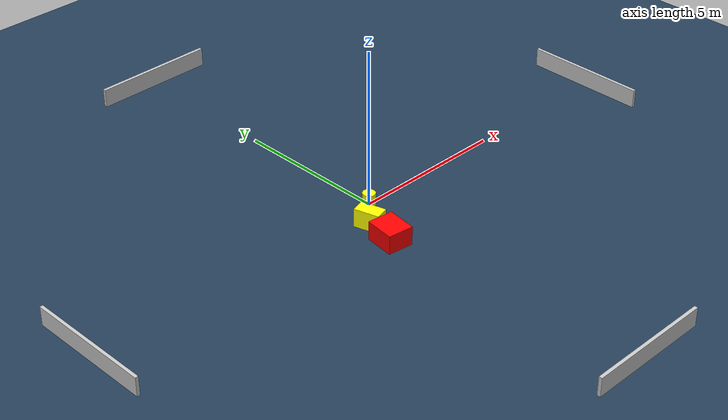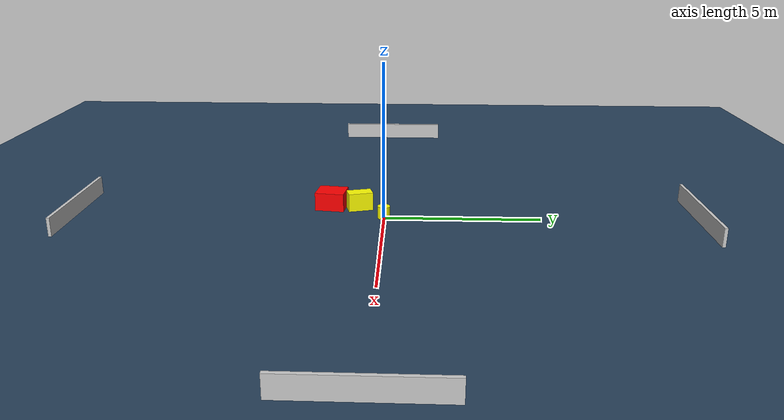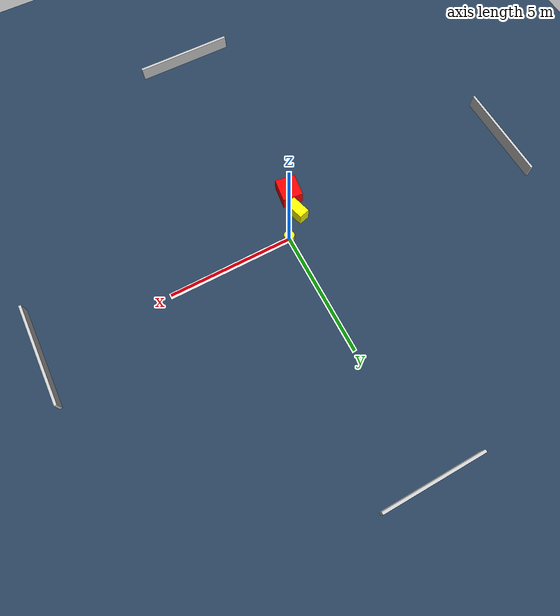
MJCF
<?xml version="1.0" ?>
<mujoco model="generated_environment">
  <option timestep="0.01" integrator="RK4" cone="elliptic"/>
  <default>
    <geom density="1"/>
  </default>
  <asset>
    <texture builtin="gradient" height="3072" name="skybox" rgb1="0.3 0.5 0.7" rgb2="0 0 0" type="skybox" width="512"/>
    <texture builtin="checker" height="300" name="groundplane" rgb1="0.2 0.3 0.4" rgb2="0.1 0.2 0.3" type="2d" width="300"/>
    <material name="groundplane" reflectance="0.2" texrepeat="5 5" texture="groundplane"/>
  </asset>
  <worldbody>
    <light dir="0 0 -1" directional="true" pos="0 0 1.5"/>
    <geom condim="3" friction="0.5 0.005 0.001" material="groundplane" name="floor" pos="0 0 0" size="0 0 0.05" type="plane"/>
    <body name="walls">
      <geom name="wall_1" condim="4" pos="-10.0 0.0 0.3" rgba="0.800000011920929 0.800000011920929 0.800000011920929 1.0" size="0.05 2.0 0.3" type="box"/>
      <geom name="wall_2" condim="4" pos="10.0 0.0 0.3" rgba="0.800000011920929 0.800000011920929 0.800000011920929 1.0" size="0.05 2.0 0.3" type="box"/>
      <geom name="wall_3" condim="4" pos="0.0 -10.0 0.3" rgba="0.800000011920929 0.800000011920929 0.800000011920929 1.0" size="2.0 0.05 0.3" type="box"/>
      <geom name="wall_4" condim="4" pos="0.0 10.0 0.3" rgba="0.800000011920929 0.800000011920929 0.800000011920929 1.0" size="2.0 0.05 0.3" type="box"/>
    </body>
    <body name="robot">
      <joint name="joint_x" type="slide" pos="0 0 0" axis="1 0 0"/>
      <joint name="joint_y" type="slide" pos="0 0 0" axis="0 1 0"/>
      <geom name="robot" type="cylinder" pos="0.0 0.0 0.2" size="0.2 0.2 0.0" mass="5.0" friction="1.0 0.005 0.0001" condim="4" rgba="1.0 1.0 0.0 1.0"/>
    </body>
    <body name="obstacle_1_movable">
      <geom name="obstacle_1_movable" condim="4" pos="-0.7942875483713737 -0.8307448966111955 0.3" euler="0 0 195.64914027100124" friction="0.0 0.005 0.001" rgba="1.0 1.0 0.0 1.0" size="0.2201031075626961 0.40380418307582433 0.3" type="box" mass="0.1"/>
      <joint type="free"/>
    </body>
    <body name="obstacle_2_static">
      <geom name="obstacle_2_static" condim="4" pos="-0.9176632044693867 -1.7653305249278028 0.3" euler="0 0 262.7816849436431" friction="0.0 0.005 0.001" rgba="1.0 0.0 0.0 1.0" size="0.47579267288649507 0.4078352797405166 0.3" type="box"/>
    </body>
  </worldbody>
  <actuator>
    <motor name="actuator_x" joint="joint_x" gear="1" ctrlrange="-1 1"/>
    <motor name="actuator_y" joint="joint_y" gear="1" ctrlrange="-1 1"/>
  </actuator>
</mujoco>
